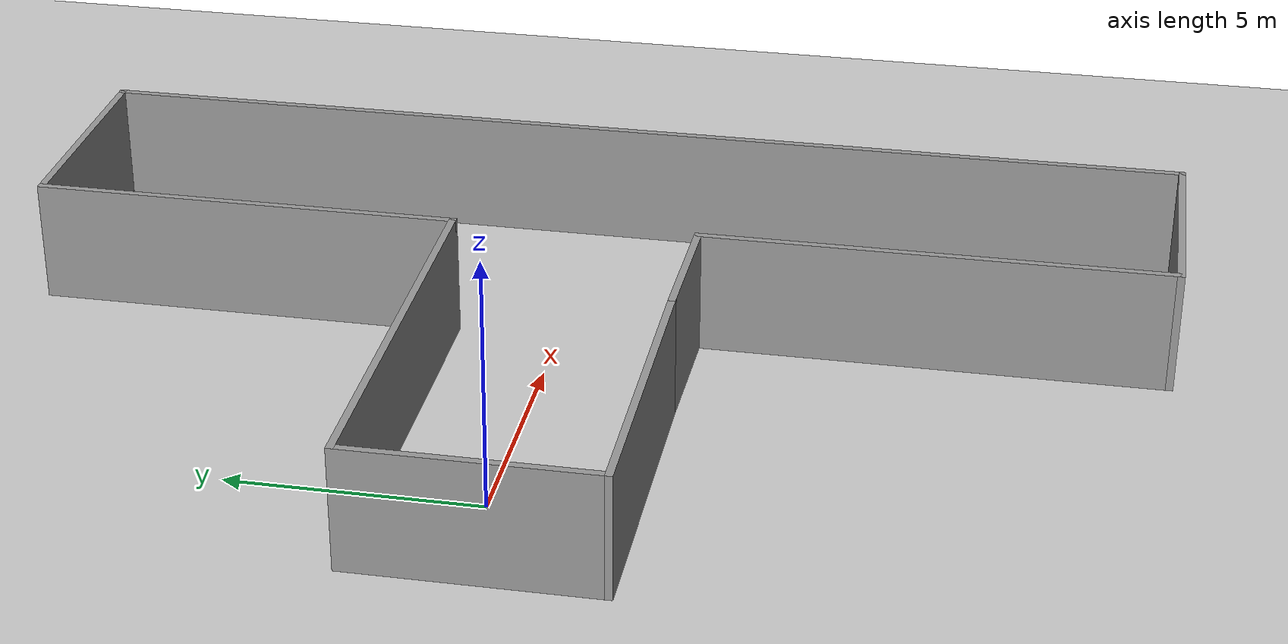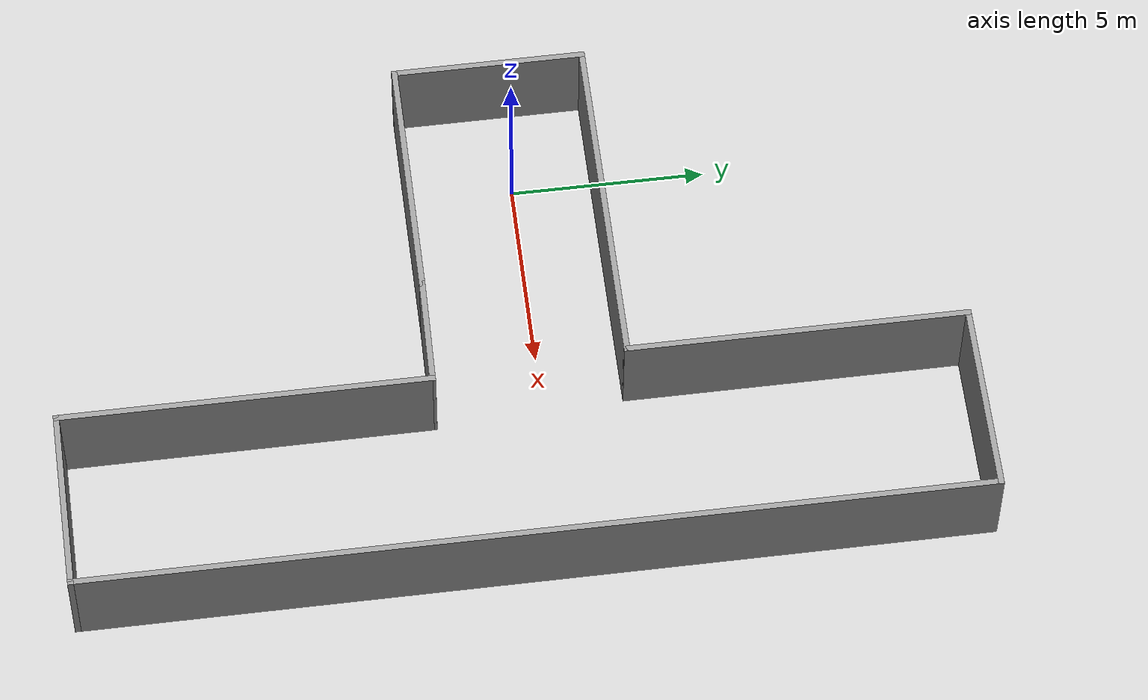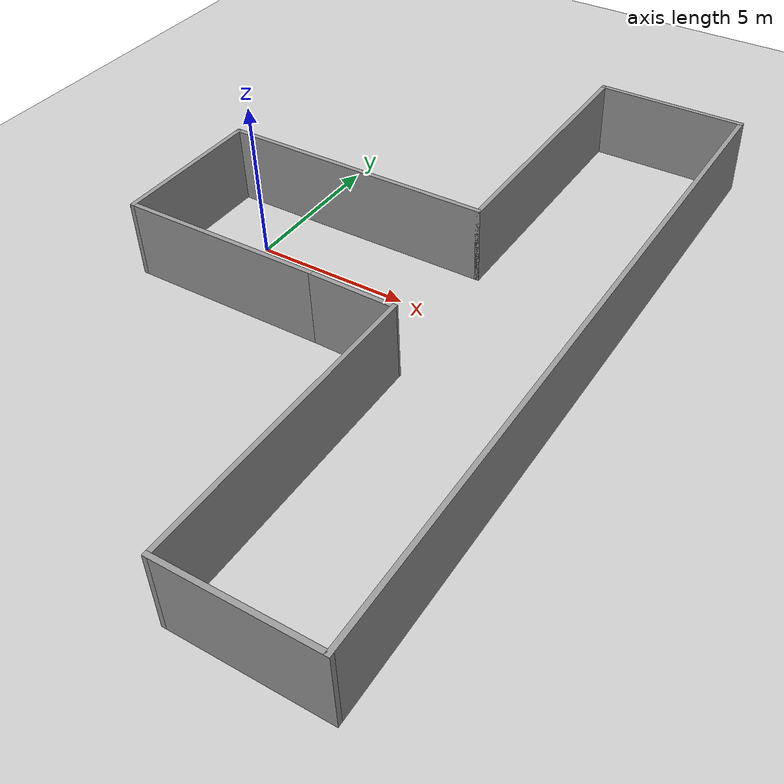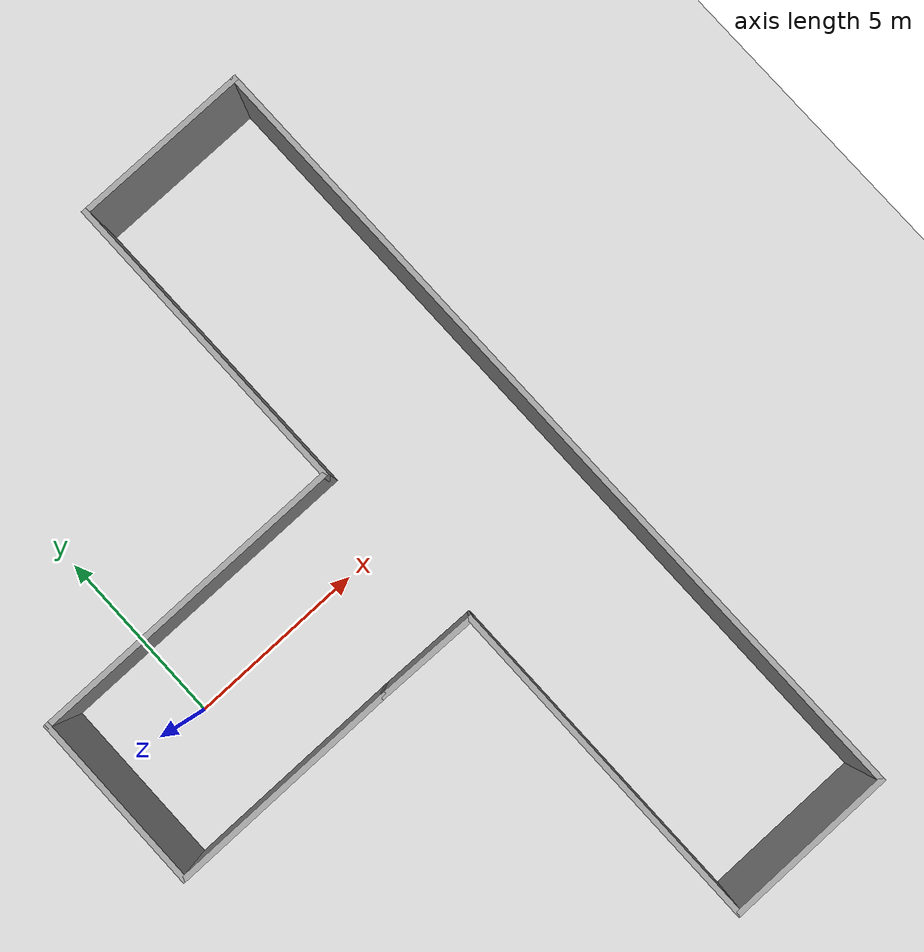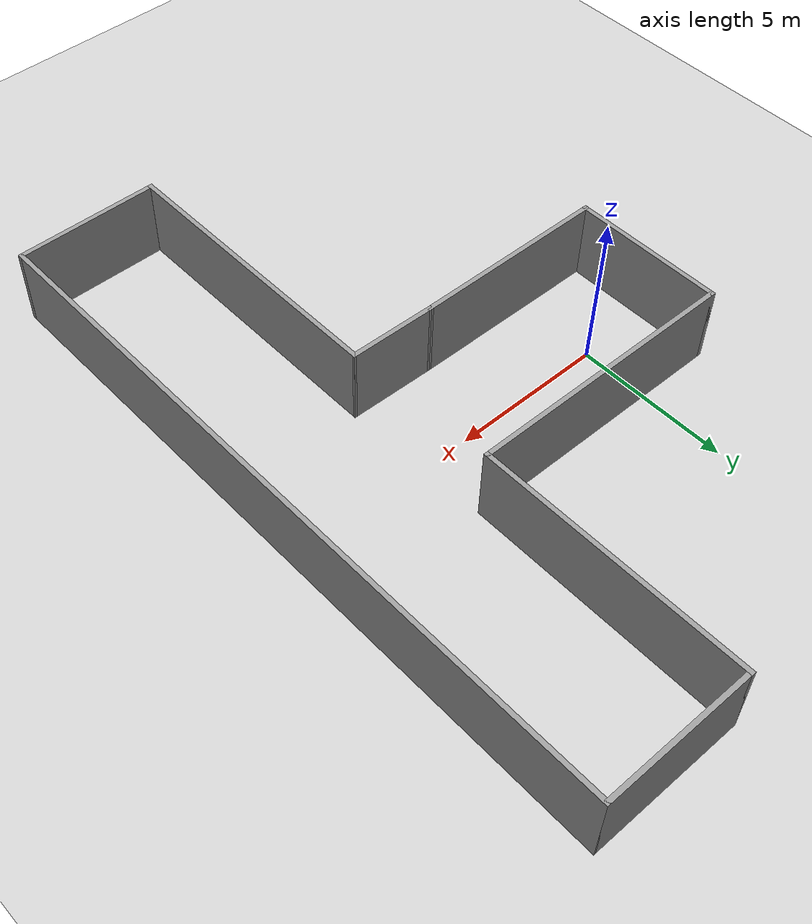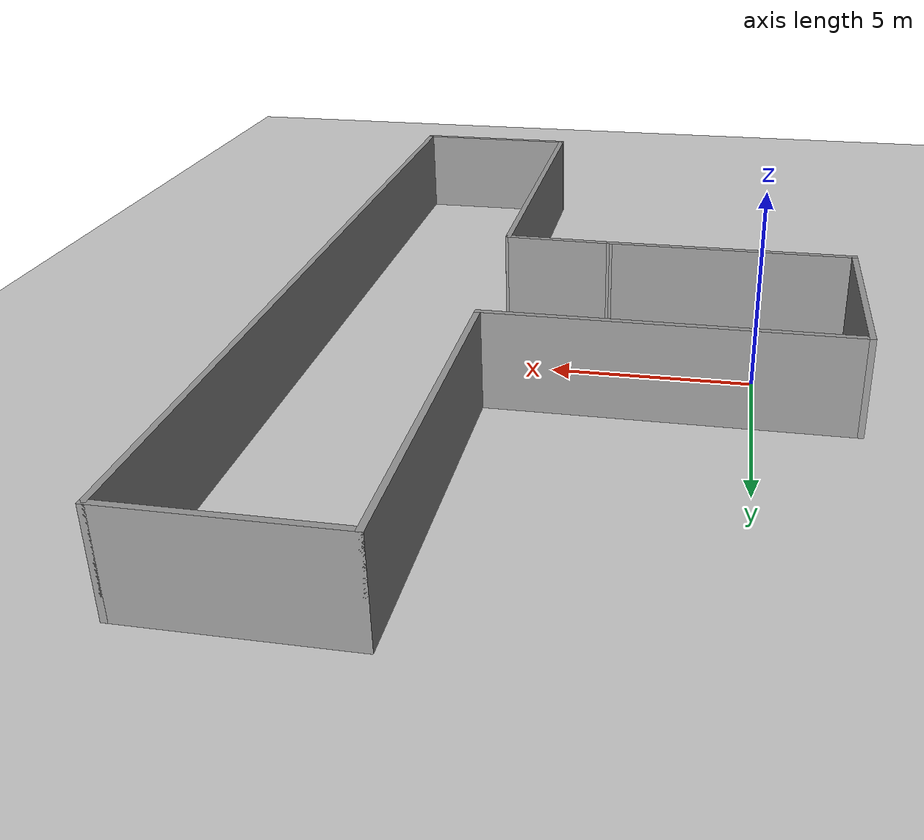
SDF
<sdf version="1.7">
 <world name="lab_world">
  <gravity>0 0 -9.8</gravity>
  <model name="ground_plane">
   <static>1</static>
   <link name="link">
    <collision name="collision">
     <geometry><plane><normal>0 0 1</normal><size>100 100</size></plane></geometry>
     <surface><friction><ode><mu>100</mu><mu2>50</mu2></ode></friction></surface>
    </collision>
    <visual name="visual">
     <cast_shadows>0</cast_shadows>
     <geometry><plane><normal>0 0 1</normal><size>100 100</size></plane></geometry>
     <material>
      <script><uri>file://media/materials/scripts/gazebo.material</uri><name>Gazebo/Grey</name></script>
     </material>
    </visual>
   </link>
  </model>
  <light name="sun" type="directional">
   <pose>0 0 10 0 -0 0</pose>
   <diffuse>0.8 0.8 0.8 1</diffuse>
   <specular>0.2 0.2 0.2 1</specular>
   <attenuation>
    <range>1000</range>
    <constant>0.9</constant>
    <linear>0.01</linear>
    <quadratic>0.001</quadratic>
   </attenuation>
   <direction>-0.5 0.1 -0.9</direction>
   <spot><inner_angle>0</inner_angle><outer_angle>0</outer_angle><falloff>0</falloff></spot>
  </light>
  <magnetic_field>6e-06 2.3e-05 -4.2e-05</magnetic_field>
  <atmosphere type="adiabatic"/>
  <physics type="ode">
   <max_step_size>0.001</max_step_size>
   <real_time_factor>1</real_time_factor>
   <real_time_update_rate>1000</real_time_update_rate>
  </physics>
  <scene><ambient>0.4 0.4 0.4 1</ambient><background>0.7 0.7 0.7 1</background><shadows>1</shadows></scene>
  <spherical_coordinates>
   <surface_model>EARTH_WGS84</surface_model>
   <latitude_deg>0</latitude_deg>
   <longitude_deg>0</longitude_deg>
   <elevation>0</elevation>
   <heading_deg>0</heading_deg>
  </spherical_coordinates>
  <model name="place2_0">
   <pose>4.4 -0.705 0 0 -0 0</pose>
   <link name="Wall_0">
    <collision name="Wall_0_Collision">
     <geometry><box><size>6.5 0.15 2.5</size></box></geometry>
     <pose>0 0 1.25 0 -0 0</pose>
    </collision>
    <visual name="Wall_0_Visual">
     <pose>0 0 1.25 0 -0 0</pose>
     <geometry><box><size>6.5 0.15 2.5</size></box></geometry>
     <material>
      <script><uri>file://media/materials/scripts/gazebo.material</uri><name>Gazebo/Grey</name></script>
      <ambient>1 1 1 1</ambient>
     </material>
     <meta><layer>0</layer></meta>
    </visual>
    <pose>-3.675 -2.025 0 0 -0 0</pose>
   </link>
   <link name="Wall_2">
    <collision name="Wall_2_Collision">
     <geometry><box><size>5 0.15 2.5</size></box></geometry>
     <pose>0 0 1.25 0 -0 0</pose>
    </collision>
    <visual name="Wall_2_Visual">
     <pose>0 0 1.25 0 -0 0</pose>
     <geometry><box><size>5 0.15 2.5</size></box></geometry>
     <material>
      <script><uri>file://media/materials/scripts/gazebo.material</uri><name>Gazebo/Grey</name></script>
      <ambient>1 1 1 1</ambient>
     </material>
     <meta><layer>0</layer></meta>
    </visual>
    <pose>-6.85 0.4 0 0 -0 1.5708</pose>
   </link>
   <link name="Wall_3">
    <collision name="Wall_3_Collision">
     <geometry><box><size>9 0.15 2.5</size></box></geometry>
     <pose>0 0 1.25 0 -0 0</pose>
    </collision>
    <visual name="Wall_3_Visual">
     <pose>0 0 1.25 0 -0 0</pose>
     <geometry><box><size>9 0.15 2.5</size></box></geometry>
     <material>
      <script><uri>file://media/materials/scripts/gazebo.material</uri><name>Gazebo/Grey</name></script>
      <ambient>1 1 1 1</ambient>
     </material>
     <meta><layer>0</layer></meta>
    </visual>
    <pose>-2.425 2.825 0 0 -0 0</pose>
   </link>
   <link name="Wall_4">
    <collision name="Wall_4_Collision">
     <geometry><box><size>8.75 0.15 2.5</size></box></geometry>
     <pose>0 0 1.25 0 -0 0</pose>
    </collision>
    <visual name="Wall_4_Visual">
     <pose>0 0 1.25 0 -0 0</pose>
     <geometry><box><size>8.75 0.15 2.5</size></box></geometry>
     <material>
      <script><uri>file://media/materials/scripts/gazebo.material</uri><name>Gazebo/Grey</name></script>
      <ambient>1 1 1 1</ambient>
     </material>
     <meta><layer>0</layer></meta>
    </visual>
    <pose>2 7.125 0 0 -0 1.5708</pose>
   </link>
   <link name="Wall_5">
    <collision name="Wall_5_Collision">
     <geometry><box><size>5 0.15 2.5</size></box></geometry>
     <pose>0 0 1.25 0 -0 0</pose>
    </collision>
    <visual name="Wall_5_Visual">
     <pose>0 0 1.25 0 -0 0</pose>
     <geometry><box><size>5 0.15 2.5</size></box></geometry>
     <material>
      <script><uri>file://media/materials/scripts/gazebo.material</uri><name>Gazebo/Grey</name></script>
      <ambient>1 1 1 1</ambient>
     </material>
     <meta><layer>0</layer></meta>
    </visual>
    <pose>4.425 11.425 0 0 -0 0</pose>
   </link>
   <link name="Wall_6">
    <collision name="Wall_6_Collision">
     <geometry><box><size>23 0.15 2.5</size></box></geometry>
     <pose>0 0 1.25 0 -0 0</pose>
    </collision>
    <visual name="Wall_6_Visual">
     <pose>0 0 1.25 0 -0 0</pose>
     <geometry><box><size>23 0.15 2.5</size></box></geometry>
     <material>
      <script><uri>file://media/materials/scripts/gazebo.material</uri><name>Gazebo/Grey</name></script>
      <ambient>1 1 1 1</ambient>
     </material>
     <meta><layer>0</layer></meta>
    </visual>
    <pose>6.85 -0 0 0 -0 -1.5708</pose>
   </link>
   <link name="Wall_7">
    <collision name="Wall_7_Collision">
     <geometry><box><size>4.75 0.15 2.5</size></box></geometry>
     <pose>0 0 1.25 0 -0 0</pose>
    </collision>
    <visual name="Wall_7_Visual">
     <pose>0 0 1.25 0 -0 0</pose>
     <geometry><box><size>4.75 0.15 2.5</size></box></geometry>
     <material>
      <script><uri>file://media/materials/scripts/gazebo.material</uri><name>Gazebo/Grey</name></script>
      <ambient>1 1 1 1</ambient>
     </material>
     <meta><layer>0</layer></meta>
    </visual>
    <pose>4.55 -11.425 0 0 -0 3.14159</pose>
   </link>
   <link name="Wall_8">
    <collision name="Wall_8_Collision">
     <geometry><box><size>9.5 0.15 2.5</size></box></geometry>
     <pose>0 0 1.25 0 -0 0</pose>
    </collision>
    <visual name="Wall_8_Visual">
     <pose>0 0 1.25 0 -0 0</pose>
     <geometry><box><size>9.5 0.15 2.5</size></box></geometry>
     <material>
      <script><uri>file://media/materials/scripts/gazebo.material</uri><name>Gazebo/Grey</name></script>
      <ambient>1 1 1 1</ambient>
     </material>
     <meta><layer>0</layer></meta>
    </visual>
    <pose>2.25 -6.75 0 0 -0 1.5708</pose>
   </link>
   <link name="Wall_9">
    <collision name="Wall_9_Collision">
     <geometry><box><size>2.90046 0.15 2.5</size></box></geometry>
     <pose>0 0 1.25 0 -0 0</pose>
    </collision>
    <visual name="Wall_9_Visual">
     <pose>0 0 1.25 0 -0 0</pose>
     <geometry><box><size>2.90046 0.15 2.5</size></box></geometry>
     <material>
      <script><uri>file://media/materials/scripts/gazebo.material</uri><name>Gazebo/Grey</name></script>
      <ambient>1 1 1 1</ambient>
     </material>
     <meta><layer>0</layer></meta>
    </visual>
    <pose>0.874999 -2.05 0 0 -0 3.12341</pose>
   </link>
   <static>1</static>
  </model>
 </world>
</sdf>
